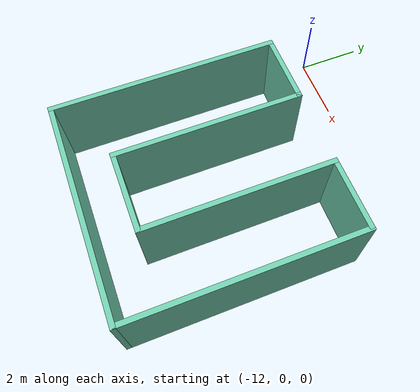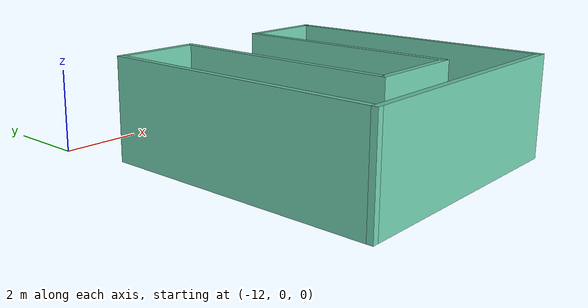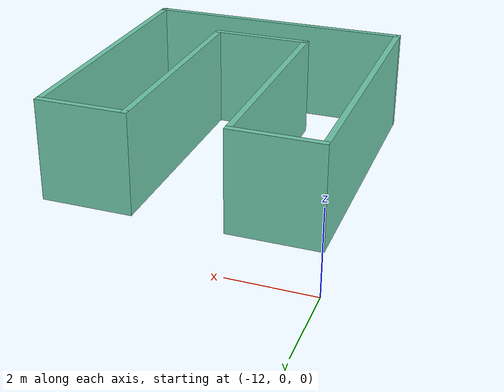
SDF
<?xml version='1.0'?>
<sdf version='1.7'>
  <model name='mybuilding'>
    <pose>-5.81429 -4.30633 0 0 -0 0</pose>
    <link name='Wall_10'>
      <collision name='Wall_10_Collision'>
        <geometry>
          <box>
            <size>7 0.15 2.5</size>
          </box>
        </geometry>
        <pose>0 0 1.25 0 -0 0</pose>
      </collision>
      <visual name='Wall_10_Visual'>
        <pose>0 0 1.25 0 -0 0</pose>
        <geometry>
          <box>
            <size>7 0.15 2.5</size>
          </box>
        </geometry>
        <material>
          <script>
            <uri>file://media/materials/scripts/gazebo.material</uri>
            <name>Gazebo/Grey</name>
          </script>
          <ambient>0.435294 0.796078 0.67451 1</ambient>
        </material>
        <meta>
          <layer>0</layer>
        </meta>
      </visual>
      <pose>0.810709 -0.806335 0 0 -0 -1.5708</pose>
    </link>
    <link name='Wall_11'>
      <collision name='Wall_11_Collision'>
        <geometry>
          <box>
            <size>6.7 0.15 2.5</size>
          </box>
        </geometry>
        <pose>0 0 1.25 0 -0 0</pose>
      </collision>
      <visual name='Wall_11_Visual'>
        <pose>0 0 1.25 0 -0 0</pose>
        <geometry>
          <box>
            <size>6.7 0.15 2.5</size>
          </box>
        </geometry>
        <material>
          <script>
            <uri>file://media/materials/scripts/gazebo.material</uri>
            <name>Gazebo/Grey</name>
          </script>
          <ambient>0.435294 0.796078 0.67451 1</ambient>
        </material>
        <meta>
          <layer>0</layer>
        </meta>
      </visual>
      <pose>-2.46429 -4.23134 0 0 -0 3.14159</pose>
    </link>
    <link name='Wall_4'>
      <collision name='Wall_4_Collision'>
        <geometry>
          <box>
            <size>7 0.15 2.5</size>
          </box>
        </geometry>
        <pose>0 0 1.25 0 -0 0</pose>
      </collision>
      <visual name='Wall_4_Visual'>
        <pose>0 0 1.25 0 -0 0</pose>
        <geometry>
          <box>
            <size>7 0.15 2.5</size>
          </box>
        </geometry>
        <material>
          <script>
            <uri>file://media/materials/scripts/gazebo.material</uri>
            <name>Gazebo/Grey</name>
          </script>
          <ambient>0.435294 0.796078 0.67451 1</ambient>
        </material>
        <meta>
          <layer>0</layer>
        </meta>
      </visual>
      <pose>-5.73929 -0.806335 0 0 -0 1.5708</pose>
    </link>
    <link name='Wall_5'>
      <collision name='Wall_5_Collision'>
        <geometry>
          <box>
            <size>2.25 0.15 2.5</size>
          </box>
        </geometry>
        <pose>0 0 1.25 0 -0 0</pose>
      </collision>
      <visual name='Wall_5_Visual'>
        <pose>0 0 1.25 0 -0 0</pose>
        <geometry>
          <box>
            <size>2.25 0.15 2.5</size>
          </box>
        </geometry>
        <material>
          <script>
            <uri>file://media/materials/scripts/gazebo.material</uri>
            <name>Gazebo/Grey</name>
          </script>
          <ambient>0.435294 0.796078 0.67451 1</ambient>
        </material>
        <meta>
          <layer>0</layer>
        </meta>
      </visual>
      <pose>-4.68929 2.61867 0 0 -0 0</pose>
    </link>
    <link name='Wall_6'>
      <collision name='Wall_6_Collision'>
        <geometry>
          <box>
            <size>5.75 0.15 2.5</size>
          </box>
        </geometry>
        <pose>0 0 1.25 0 -0 0</pose>
      </collision>
      <visual name='Wall_6_Visual'>
        <pose>0 0 1.25 0 -0 0</pose>
        <geometry>
          <box>
            <size>5.75 0.15 2.5</size>
          </box>
        </geometry>
        <material>
          <script>
            <uri>file://media/materials/scripts/gazebo.material</uri>
            <name>Gazebo/Grey</name>
          </script>
          <ambient>0.435294 0.796078 0.67451 1</ambient>
        </material>
        <meta>
          <layer>0</layer>
        </meta>
      </visual>
      <pose>-3.63929 -0.181335 0 0 -0 -1.5708</pose>
    </link>
    <link name='Wall_7'>
      <collision name='Wall_7_Collision'>
        <geometry>
          <box>
            <size>2.5 0.15 2.5</size>
          </box>
        </geometry>
        <pose>0 0 1.25 0 -0 0</pose>
      </collision>
      <visual name='Wall_7_Visual'>
        <pose>0 0 1.25 0 -0 0</pose>
        <geometry>
          <box>
            <size>2.5 0.15 2.5</size>
          </box>
        </geometry>
        <material>
          <script>
            <uri>file://media/materials/scripts/gazebo.material</uri>
            <name>Gazebo/Grey</name>
          </script>
          <ambient>0.435294 0.796078 0.67451 1</ambient>
        </material>
        <meta>
          <layer>0</layer>
        </meta>
      </visual>
      <pose>-2.46429 -2.98134 0 0 -0 0</pose>
    </link>
    <link name='Wall_8'>
      <collision name='Wall_8_Collision'>
        <geometry>
          <box>
            <size>5.75 0.15 2.5</size>
          </box>
        </geometry>
        <pose>0 0 1.25 0 -0 0</pose>
      </collision>
      <visual name='Wall_8_Visual'>
        <pose>0 0 1.25 0 -0 0</pose>
        <geometry>
          <box>
            <size>5.75 0.15 2.5</size>
          </box>
        </geometry>
        <material>
          <script>
            <uri>file://media/materials/scripts/gazebo.material</uri>
            <name>Gazebo/Grey</name>
          </script>
          <ambient>0.435294 0.796078 0.67451 1</ambient>
        </material>
        <meta>
          <layer>0</layer>
        </meta>
      </visual>
      <pose>-1.28929 -0.181335 0 0 -0 1.5708</pose>
    </link>
    <link name='Wall_9'>
      <collision name='Wall_9_Collision'>
        <geometry>
          <box>
            <size>2.25 0.15 2.5</size>
          </box>
        </geometry>
        <pose>0 0 1.25 0 -0 0</pose>
      </collision>
      <visual name='Wall_9_Visual'>
        <pose>0 0 1.25 0 -0 0</pose>
        <geometry>
          <box>
            <size>2.25 0.15 2.5</size>
          </box>
        </geometry>
        <material>
          <script>
            <uri>file://media/materials/scripts/gazebo.material</uri>
            <name>Gazebo/Grey</name>
          </script>
          <ambient>0.435294 0.796078 0.67451 1</ambient>
        </material>
        <meta>
          <layer>0</layer>
        </meta>
      </visual>
      <pose>-0.239291 2.61867 0 0 -0 0</pose>
    </link>
    <static>1</static>
  </model>
</sdf>
